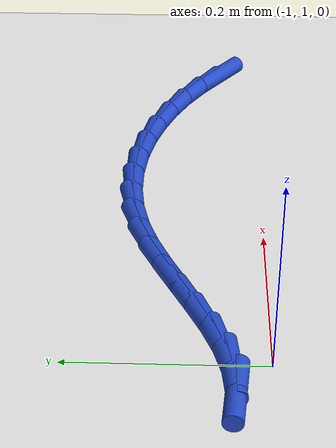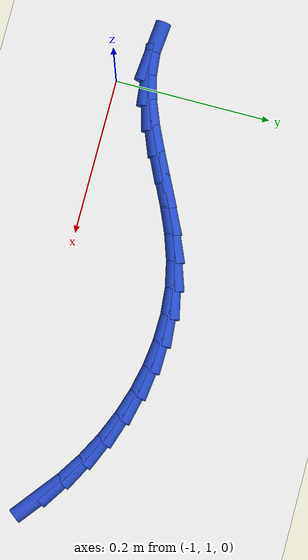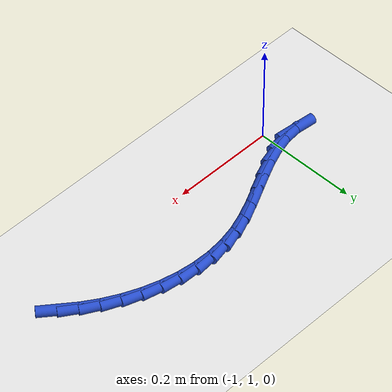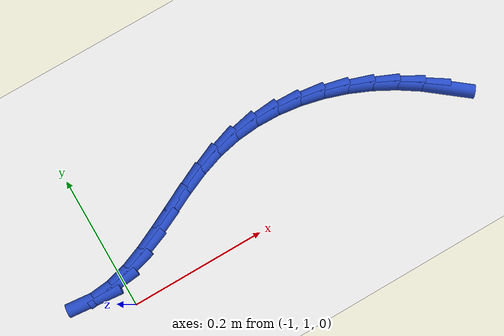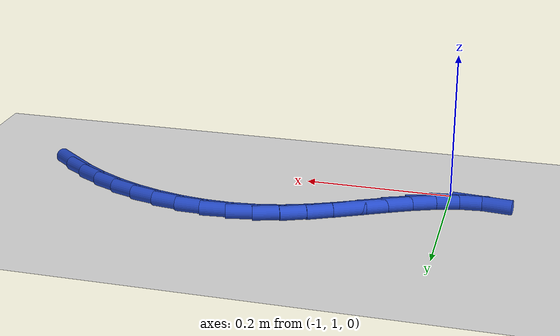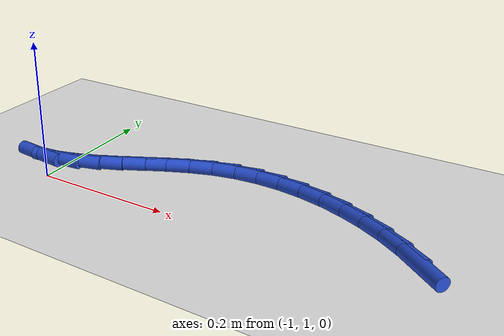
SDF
<sdf version="1.6">
 <world name="default">
  <model name="ground_plane">
   <static>1</static>
   <link name="link">
    <collision name="collision">
     <geometry><plane><normal>0 0 1</normal><size>100 100</size></plane></geometry>
     <surface><friction><ode><mu>100</mu><mu2>50</mu2></ode></friction></surface>
    </collision>
    <visual name="visual">
     <cast_shadows>0</cast_shadows>
     <geometry><plane><normal>0 0 1</normal><size>100 100</size></plane></geometry>
     <material>
      <script><uri>file://media/materials/scripts/gazebo.material</uri><name>Gazebo/WhiteGlow</name></script>
     </material>
    </visual>
   </link>
  </model>
  <model name="line">
   <link name="link_35">
    <pose>-0.46955616965592606 1.043959741896773 0.01 0 1.57 -0.6683407710449254</pose>
    <collision name="collision">
     <geometry><cylinder><radius>0.01</radius><length>0.08</length></cylinder></geometry>
    </collision>
    <visual name="visual">
     <material>
      <script><name>Gazebo/Blue</name><uri>file://media/materials/scripts/gazebo.material</uri></script>
     </material>
     <geometry><cylinder><radius>0.01</radius><length>0.08</length></cylinder></geometry>
    </visual>
   </link>
   <link name="link_36">
    <pose>-0.49693047187999473 1.0655733150980042 0.01 0 1.57 -0.5804236306615369</pose>
    <collision name="collision">
     <geometry><cylinder><radius>0.01</radius><length>0.08</length></cylinder></geometry>
    </collision>
    <visual name="visual">
     <material>
      <script><name>Gazebo/Blue</name><uri>file://media/materials/scripts/gazebo.material</uri></script>
     </material>
     <geometry><cylinder><radius>0.01</radius><length>0.08</length></cylinder></geometry>
    </visual>
   </link>
   <link name="link_37">
    <pose>-0.526384093131403 1.0848882367475734 0.01 0 1.57 -0.49377571035946893</pose>
    <collision name="collision">
     <geometry><cylinder><radius>0.01</radius><length>0.08</length></cylinder></geometry>
    </collision>
    <visual name="visual">
     <material>
      <script><name>Gazebo/Blue</name><uri>file://media/materials/scripts/gazebo.material</uri></script>
     </material>
     <geometry><cylinder><radius>0.01</radius><length>0.08</length></cylinder></geometry>
    </visual>
   </link>
   <link name="link_38">
    <pose>-0.5575771072043505 1.1016778100619349 0.01 0 1.57 -0.406687297543019</pose>
    <collision name="collision">
     <geometry><cylinder><radius>0.01</radius><length>0.08</length></cylinder></geometry>
    </collision>
    <visual name="visual">
     <material>
      <script><name>Gazebo/Blue</name><uri>file://media/materials/scripts/gazebo.material</uri></script>
     </material>
     <geometry><cylinder><radius>0.01</radius><length>0.08</length></cylinder></geometry>
    </visual>
   </link>
   <link name="link_39">
    <pose>-0.5901695878930362 1.1157153382575424 0.01 0 1.57 -0.3175041588391482</pose>
    <collision name="collision">
     <geometry><cylinder><radius>0.01</radius><length>0.08</length></cylinder></geometry>
    </collision>
    <visual name="visual">
     <material>
      <script><name>Gazebo/Blue</name><uri>file://media/materials/scripts/gazebo.material</uri></script>
     </material>
     <geometry><cylinder><radius>0.01</radius><length>0.08</length></cylinder></geometry>
    </visual>
   </link>
   <link name="link_40">
    <pose>-0.6238216089916598 1.1267741245508505 0.01 0 1.57 -0.22462749539016788</pose>
    <collision name="collision">
     <geometry><cylinder><radius>0.01</radius><length>0.08</length></cylinder></geometry>
    </collision>
    <visual name="visual">
     <material>
      <script><name>Gazebo/Blue</name><uri>file://media/materials/scripts/gazebo.material</uri></script>
     </material>
     <geometry><cylinder><radius>0.01</radius><length>0.08</length></cylinder></geometry>
    </visual>
   </link>
   <link name="link_41">
    <pose>-0.65819324429442 1.1346274721583132 0.01 0 1.57 -0.1265444534481653</pose>
    <collision name="collision">
     <geometry><cylinder><radius>0.01</radius><length>0.08</length></cylinder></geometry>
    </collision>
    <visual name="visual">
     <material>
      <script><name>Gazebo/Blue</name><uri>file://media/materials/scripts/gazebo.material</uri></script>
     </material>
     <geometry><cylinder><radius>0.01</radius><length>0.08</length></cylinder></geometry>
    </visual>
   </link>
   <link name="link_42">
    <pose>-0.6929445675955168 1.1390486842963845 0.01 0 1.57 -0.021909575136972195</pose>
    <collision name="collision">
     <geometry><cylinder><radius>0.01</radius><length>0.08</length></cylinder></geometry>
    </collision>
    <visual name="visual">
     <material>
      <script><name>Gazebo/Blue</name><uri>file://media/materials/scripts/gazebo.material</uri></script>
     </material>
     <geometry><cylinder><radius>0.01</radius><length>0.08</length></cylinder></geometry>
    </visual>
   </link>
   <link name="link_43">
    <pose>-0.7277356526891489 1.1398110641815182 0.01 0 1.57 0.09030362127373852</pose>
    <collision name="collision">
     <geometry><cylinder><radius>0.01</radius><length>0.08</length></cylinder></geometry>
    </collision>
    <visual name="visual">
     <material>
      <script><name>Gazebo/Blue</name><uri>file://media/materials/scripts/gazebo.material</uri></script>
     </material>
     <geometry><cylinder><radius>0.01</radius><length>0.08</length></cylinder></geometry>
    </visual>
   </link>
   <link name="link_44">
    <pose>-0.7622265733695159 1.1366879150301683 0.01 0 1.57 0.2105340463668625</pose>
    <collision name="collision">
     <geometry><cylinder><radius>0.01</radius><length>0.08</length></cylinder></geometry>
    </collision>
    <visual name="visual">
     <material>
      <script><name>Gazebo/Blue</name><uri>file://media/materials/scripts/gazebo.material</uri></script>
     </material>
     <geometry><cylinder><radius>0.01</radius><length>0.08</length></cylinder></geometry>
    </visual>
   </link>
   <link name="link_45">
    <pose>-0.7960778137168979 1.1294538773477591 0.01 0 1.57 0.3262258473721855</pose>
    <collision name="collision">
     <geometry><cylinder><radius>0.01</radius><length>0.08</length></cylinder></geometry>
    </collision>
    <visual name="visual">
     <material>
      <script><name>Gazebo/Blue</name><uri>file://media/materials/scripts/gazebo.material</uri></script>
     </material>
     <geometry><cylinder><radius>0.01</radius><length>0.08</length></cylinder></geometry>
    </visual>
   </link>
   <link name="link_46">
    <pose>-0.8290747242917752 1.118290582211539 0.01 0 1.57 0.40806243210691506</pose>
    <collision name="collision">
     <geometry><cylinder><radius>0.01</radius><length>0.08</length></cylinder></geometry>
    </collision>
    <visual name="visual">
     <material>
      <script><name>Gazebo/Blue</name><uri>file://media/materials/scripts/gazebo.material</uri></script>
     </material>
     <geometry><cylinder><radius>0.01</radius><length>0.08</length></cylinder></geometry>
    </visual>
   </link>
   <link name="link_47">
    <pose>-0.8613026590067666 1.1043574934657228 0.01 0 1.57 0.45360297334405425</pose>
    <collision name="collision">
     <geometry><cylinder><radius>0.01</radius><length>0.08</length></cylinder></geometry>
    </collision>
    <visual name="visual">
     <material>
      <script><name>Gazebo/Blue</name><uri>file://media/materials/scripts/gazebo.material</uri></script>
     </material>
     <geometry><cylinder><radius>0.01</radius><length>0.08</length></cylinder></geometry>
    </visual>
   </link>
   <link name="link_48">
    <pose>-0.8928911041101981 1.0889579201603576 0.01 0 1.57 0.46425306585119125</pose>
    <collision name="collision">
     <geometry><cylinder><radius>0.01</radius><length>0.08</length></cylinder></geometry>
    </collision>
    <visual name="visual">
     <material>
      <script><name>Gazebo/Blue</name><uri>file://media/materials/scripts/gazebo.material</uri></script>
     </material>
     <geometry><cylinder><radius>0.01</radius><length>0.08</length></cylinder></geometry>
    </visual>
   </link>
   <link name="link_49">
    <pose>-0.9239695458503967 1.0733951713454921 0.01 0 1.57 0.43921654905221685</pose>
    <collision name="collision">
     <geometry><cylinder><radius>0.01</radius><length>0.08</length></cylinder></geometry>
    </collision>
    <visual name="visual">
     <material>
      <script><name>Gazebo/Blue</name><uri>file://media/materials/scripts/gazebo.material</uri></script>
     </material>
     <geometry><cylinder><radius>0.01</radius><length>0.08</length></cylinder></geometry>
    </visual>
   </link>
   <link name="link_50">
    <pose>-0.9546674704756897 1.0589725560711736 0.01 0 1.57 0.3748426192967173</pose>
    <collision name="collision">
     <geometry><cylinder><radius>0.01</radius><length>0.08</length></cylinder></geometry>
    </collision>
    <visual name="visual">
     <material>
      <script><name>Gazebo/Blue</name><uri>file://media/materials/scripts/gazebo.material</uri></script>
     </material>
     <geometry><cylinder><radius>0.01</radius><length>0.08</length></cylinder></geometry>
    </visual>
   </link>
   <link name="link_51">
    <pose>-0.9851143642344034 1.0469933833874498 0.01 0 1.57 0.2650813996110888</pose>
    <collision name="collision">
     <geometry><cylinder><radius>0.01</radius><length>0.08</length></cylinder></geometry>
    </collision>
    <visual name="visual">
     <material>
      <script><name>Gazebo/Blue</name><uri>file://media/materials/scripts/gazebo.material</uri></script>
     </material>
     <geometry><cylinder><radius>0.01</radius><length>0.08</length></cylinder></geometry>
    </visual>
   </link>
   <link name="link_52">
    <pose>-1.015439713374865 1.0387609623443688 0.01 0 1.57 0.10453073006149202</pose>
    <collision name="collision">
     <geometry><cylinder><radius>0.01</radius><length>0.08</length></cylinder></geometry>
    </collision>
    <visual name="visual">
     <material>
      <script><name>Gazebo/Blue</name><uri>file://media/materials/scripts/gazebo.material</uri></script>
     </material>
     <geometry><cylinder><radius>0.01</radius><length>0.08</length></cylinder></geometry>
    </visual>
   </link>
   <link name="link_53">
    <pose>-1.045773004145401 1.0355786019919782 0.01 0 1.57 -0.0980037029495043</pose>
    <collision name="collision">
     <geometry><cylinder><radius>0.01</radius><length>0.08</length></cylinder></geometry>
    </collision>
    <visual name="visual">
     <material>
      <script><name>Gazebo/Blue</name><uri>file://media/materials/scripts/gazebo.material</uri></script>
     </material>
     <geometry><cylinder><radius>0.01</radius><length>0.08</length></cylinder></geometry>
    </visual>
   </link>
  </model>
 </world>
</sdf>
